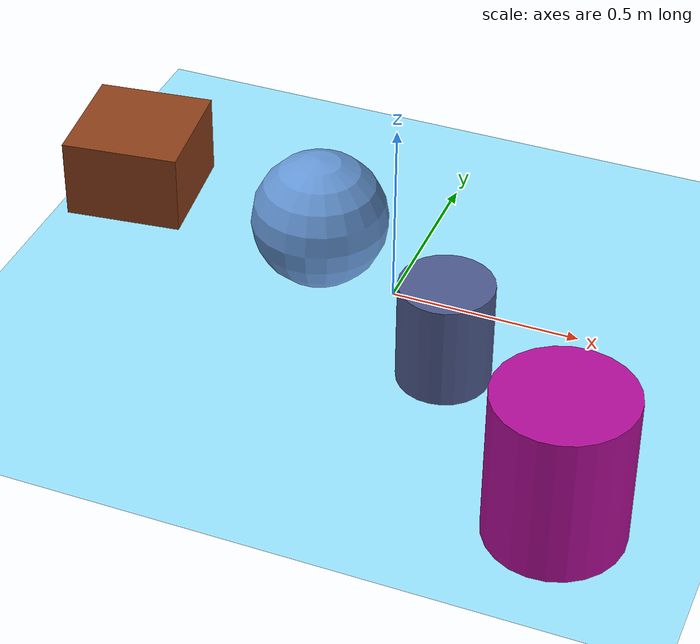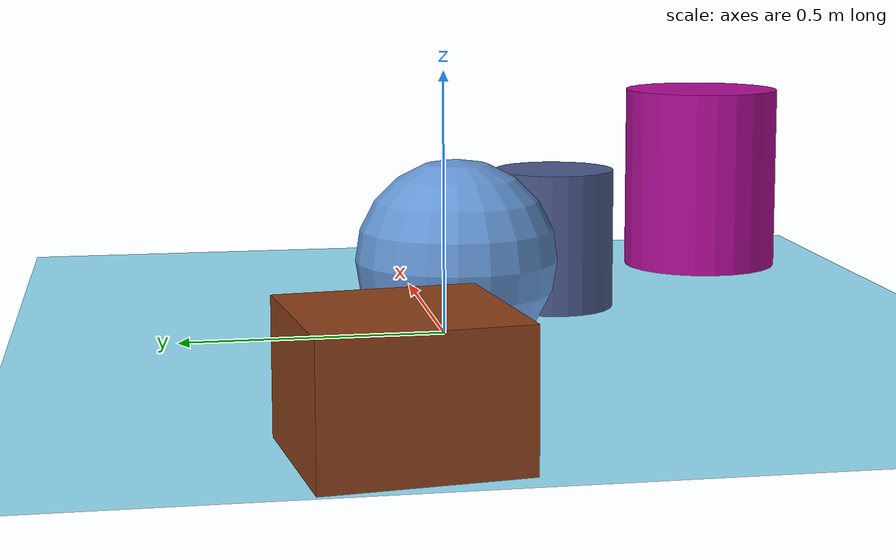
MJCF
<mujoco>
   <asset>
<texture type="skybox" builtin="gradient" rgb1="0.9 1.0 0.2" rgb2="0.2 0.8 0.5" width="256" height="256"/>
<texture name="checker_0" builtin="checker" rgb1="0.1 0.9 0.8" rgb2="0.7 0.3 0.9" width="200" height="200"/>
<texture name="gradient_1" builtin="gradient" rgb1="0.6 0.2 0.1" rgb2="0.5 0.3 0.1" width="200" height="200"/>
<texture name="gradient_2" builtin="gradient" rgb1="0.6 0.6 0.1" rgb2="0.0 0.1 1.0" width="200" height="200"/>
<texture name="checker_3" builtin="checker" rgb1="0.5 0.0 0.2" rgb2="0.9 0.1 1.0" width="200" height="200"/><material name="checker_0_mat" reflectance="0" texrepeat="7 7" texture="checker_0" texuniform="false" />
<material name="gradient_1_mat" reflectance="0" texture="gradient_1" texuniform="true"/>
<material name="gradient_2_mat" reflectance="0" texture="gradient_2" texuniform="true"/>
<material name="checker_3_mat" reflectance="0" texrepeat="9 9" texture="checker_3" texuniform="false" />
   </asset>

   <worldbody>
      <light diffuse=".9 .9 .9" pos="0 0 3" dir="0 0 -1"/>
     <geom type="plane" size="1 1 0.1" rgba="0.6 0.9 1.0 1"/>
<geom type="sphere" pos="-0.21 0.01 0.18" size="0.18 0.18 0.18" material="checker_0_mat" euler="0 0 64" />
<geom type="box" pos="-0.82 0.19 0.11" size="0.16 0.16 0.11" material="gradient_1_mat" euler="0 0 7" />
<geom type="cylinder" pos="0.23 -0.26 0.14" size="0.12 0.14 0.14" material="gradient_2_mat" euler="0 0 32" />
<geom type="cylinder" pos="0.65 -0.69 0.2" size="0.17 0.2 0.2" material="checker_3_mat" euler="0 0 71" /><camera euler="60 0 180" fovy="60" name="camera1" pos="-0.2 -1.5 1"></camera>   </worldbody>
</mujoco>
